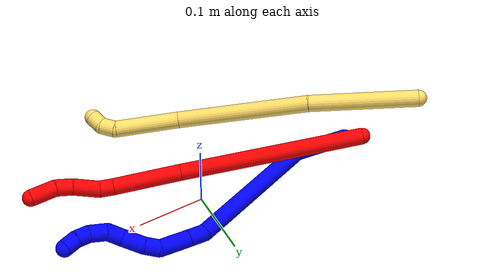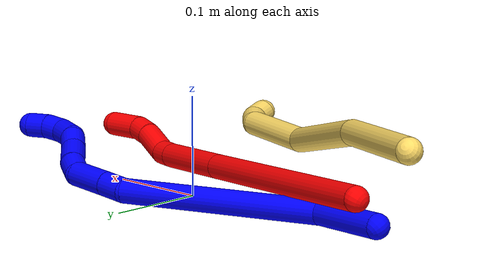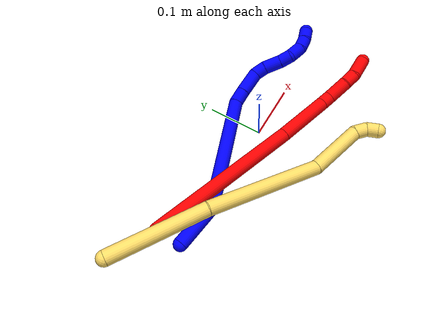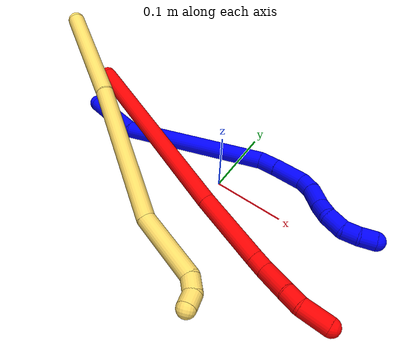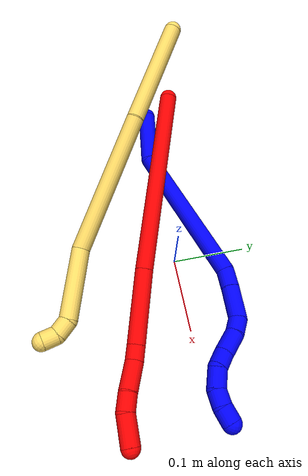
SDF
<sdf version="1.7">
 <world name="default">
  <model name="1">
   <static>0</static>
   <link name="1">
    <collision name="collision-cylinder-e_1_1_4">
     <pose>0.039305 0.000914 -0.004238 -2.92916 1.46095 -2.90466</pose>
     <geometry><cylinder><radius>0.0125</radius><length>0.079087</length></cylinder></geometry>
     <surface>
      <friction><ode><mu>1.16</mu><mu2>1.16</mu2><slip1>0</slip1><slip2>0</slip2></ode></friction>
      <contact><ode><kp>1e+06</kp><kd>1</kd><max_vel>0</max_vel><min_depth>0.001</min_depth></ode></contact>
     </surface>
    </collision>
    <visual name="visual-cylinder-e_1_1_4">
     <pose>0.039305 0.000914 -0.004238 -2.92916 1.46095 -2.90466</pose>
     <geometry><cylinder><radius>0.0125</radius><length>0.079087</length></cylinder></geometry>
     <material><ambient>0 0 1 1</ambient></material>
    </visual>
    <collision name="collision-cylinder-e_2_4_5">
     <pose>0.165535 0.030857 -0.057255 -2.60478 0.992293 -2.20137</pose>
     <geometry><cylinder><radius>0.0125</radius><length>0.207634</length></cylinder></geometry>
     <surface>
      <friction><ode><mu>1.16</mu><mu2>1.16</mu2><slip1>0</slip1><slip2>0</slip2></ode></friction>
      <contact><ode><kp>1e+06</kp><kd>1</kd><max_vel>0</max_vel><min_depth>0.001</min_depth></ode></contact>
     </surface>
    </collision>
    <visual name="visual-cylinder-e_2_4_5">
     <pose>0.165535 0.030857 -0.057255 -2.60478 0.992293 -2.20137</pose>
     <geometry><cylinder><radius>0.0125</radius><length>0.207634</length></cylinder></geometry>
     <material><ambient>0 0 1 1</ambient></material>
    </visual>
    <collision name="collision-cylinder-e_3_5_6">
     <pose>0.265033 0.062483 -0.108038 -2.22781 1.31566 -2.00831</pose>
     <geometry><cylinder><radius>0.0125</radius><length>0.025989</length></cylinder></geometry>
     <surface>
      <friction><ode><mu>1.16</mu><mu2>1.16</mu2><slip1>0</slip1><slip2>0</slip2></ode></friction>
      <contact><ode><kp>1e+06</kp><kd>1</kd><max_vel>0</max_vel><min_depth>0.001</min_depth></ode></contact>
     </surface>
    </collision>
    <visual name="visual-cylinder-e_3_5_6">
     <pose>0.265033 0.062483 -0.108038 -2.22781 1.31566 -2.00831</pose>
     <geometry><cylinder><radius>0.0125</radius><length>0.025989</length></cylinder></geometry>
     <material><ambient>0 0 1 1</ambient></material>
    </visual>
    <collision name="collision-cylinder-e_4_6_7">
     <pose>0.299246 0.068547 -0.113116 -2.29648 1.35983 -2.12651</pose>
     <geometry><cylinder><radius>0.0125</radius><length>0.044261</length></cylinder></geometry>
     <surface>
      <friction><ode><mu>1.16</mu><mu2>1.16</mu2><slip1>0</slip1><slip2>0</slip2></ode></friction>
      <contact><ode><kp>1e+06</kp><kd>1</kd><max_vel>0</max_vel><min_depth>0.001</min_depth></ode></contact>
     </surface>
    </collision>
    <visual name="visual-cylinder-e_4_6_7">
     <pose>0.299246 0.068547 -0.113116 -2.29648 1.35983 -2.12651</pose>
     <geometry><cylinder><radius>0.0125</radius><length>0.044261</length></cylinder></geometry>
     <material><ambient>0 0 1 1</ambient></material>
    </visual>
    <collision name="collision-cylinder-e_5_7_8">
     <pose>0.331153 0.073069 -0.112138 -0.254772 1.18338 -0.171717</pose>
     <geometry><cylinder><radius>0.0125</radius><length>0.022177</length></cylinder></geometry>
     <surface>
      <friction><ode><mu>1.16</mu><mu2>1.16</mu2><slip1>0</slip1><slip2>0</slip2></ode></friction>
      <contact><ode><kp>1e+06</kp><kd>1</kd><max_vel>0</max_vel><min_depth>0.001</min_depth></ode></contact>
     </surface>
    </collision>
    <visual name="visual-cylinder-e_5_7_8">
     <pose>0.331153 0.073069 -0.112138 -0.254772 1.18338 -0.171717</pose>
     <geometry><cylinder><radius>0.0125</radius><length>0.022177</length></cylinder></geometry>
     <material><ambient>0 0 1 1</ambient></material>
    </visual>
    <collision name="collision-cylinder-e_6_8_9">
     <pose>0.3549 0.073314 -0.099498 0.094126 1.00168 0.051551</pose>
     <geometry><cylinder><radius>0.0125</radius><length>0.032005</length></cylinder></geometry>
     <surface>
      <friction><ode><mu>1.16</mu><mu2>1.16</mu2><slip1>0</slip1><slip2>0</slip2></ode></friction>
      <contact><ode><kp>1e+06</kp><kd>1</kd><max_vel>0</max_vel><min_depth>0.001</min_depth></ode></contact>
     </surface>
    </collision>
    <visual name="visual-cylinder-e_6_8_9">
     <pose>0.3549 0.073314 -0.099498 0.094126 1.00168 0.051551</pose>
     <geometry><cylinder><radius>0.0125</radius><length>0.032005</length></cylinder></geometry>
     <material><ambient>0 0 1 1</ambient></material>
    </visual>
    <collision name="collision-cylinder-e_7_9_10">
     <pose>0.377677 0.073581 -0.084955 -0.178872 0.993569 -0.097156</pose>
     <geometry><cylinder><radius>0.0125</radius><length>0.022189</length></cylinder></geometry>
     <surface>
      <friction><ode><mu>1.16</mu><mu2>1.16</mu2><slip1>0</slip1><slip2>0</slip2></ode></friction>
      <contact><ode><kp>1e+06</kp><kd>1</kd><max_vel>0</max_vel><min_depth>0.001</min_depth></ode></contact>
     </surface>
    </collision>
    <visual name="visual-cylinder-e_7_9_10">
     <pose>0.377677 0.073581 -0.084955 -0.178872 0.993569 -0.097156</pose>
     <geometry><cylinder><radius>0.0125</radius><length>0.022189</length></cylinder></geometry>
     <material><ambient>0 0 1 1</ambient></material>
    </visual>
    <collision name="collision-cylinder-e_8_10_11">
     <pose>0.399832 0.07488 -0.077723 -0.172226 1.47056 -0.155843</pose>
     <geometry><cylinder><radius>0.0125</radius><length>0.025846</length></cylinder></geometry>
     <surface>
      <friction><ode><mu>1.16</mu><mu2>1.16</mu2><slip1>0</slip1><slip2>0</slip2></ode></friction>
      <contact><ode><kp>1e+06</kp><kd>1</kd><max_vel>0</max_vel><min_depth>0.001</min_depth></ode></contact>
     </surface>
    </collision>
    <visual name="visual-cylinder-e_8_10_11">
     <pose>0.399832 0.07488 -0.077723 -0.172226 1.47056 -0.155843</pose>
     <geometry><cylinder><radius>0.0125</radius><length>0.025846</length></cylinder></geometry>
     <material><ambient>0 0 1 1</ambient></material>
    </visual>
    <collision name="collision-cylinder-e_9_11_12">
     <pose>0.422193 0.077681 -0.078701 -2.28862 1.22495 -1.99349</pose>
     <geometry><cylinder><radius>0.0125</radius><length>0.020202</length></cylinder></geometry>
     <surface>
      <friction><ode><mu>1.16</mu><mu2>1.16</mu2><slip1>0</slip1><slip2>0</slip2></ode></friction>
      <contact><ode><kp>1e+06</kp><kd>1</kd><max_vel>0</max_vel><min_depth>0.001</min_depth></ode></contact>
     </surface>
    </collision>
    <visual name="visual-cylinder-e_9_11_12">
     <pose>0.422193 0.077681 -0.078701 -2.28862 1.22495 -1.99349</pose>
     <geometry><cylinder><radius>0.0125</radius><length>0.020202</length></cylinder></geometry>
     <material><ambient>0 0 1 1</ambient></material>
    </visual>
    <collision name="collision-cylinder-e_10_12_2">
     <pose>0.440429 0.082904 -0.085742 -2.63698 1.01128 -2.27003</pose>
     <geometry><cylinder><radius>0.0125</radius><length>0.02061</length></cylinder></geometry>
     <surface>
      <friction><ode><mu>1.16</mu><mu2>1.16</mu2><slip1>0</slip1><slip2>0</slip2></ode></friction>
      <contact><ode><kp>1e+06</kp><kd>1</kd><max_vel>0</max_vel><min_depth>0.001</min_depth></ode></contact>
     </surface>
    </collision>
    <visual name="visual-cylinder-e_10_12_2">
     <pose>0.440429 0.082904 -0.085742 -2.63698 1.01128 -2.27003</pose>
     <geometry><cylinder><radius>0.0125</radius><length>0.02061</length></cylinder></geometry>
     <material><ambient>0 0 1 1</ambient></material>
    </visual>
    <collision name="collision-sphere-2">
     <pose>0.449163 0.085549 -0.090529 0 -0 0</pose>
     <geometry><sphere><radius>0.0125</radius></sphere></geometry>
     <surface>
      <friction><ode><mu>1.16</mu><mu2>1.16</mu2><slip1>0</slip1><slip2>0</slip2></ode></friction>
      <contact><ode><kp>1e+06</kp><kd>1</kd><max_vel>0</max_vel><min_depth>0.001</min_depth></ode></contact>
     </surface>
    </collision>
    <visual name="visual-sphere-2">
     <pose>0.449163 0.085549 -0.090529 0 -0 0</pose>
     <geometry><sphere><radius>0.0125</radius></sphere></geometry>
     <material><ambient>0 0 1 1</ambient></material>
    </visual>
    <collision name="collision-sphere-12">
     <pose>0.431696 0.08026 -0.080954 0 -0 0</pose>
     <geometry><sphere><radius>0.0125</radius></sphere></geometry>
     <surface>
      <friction><ode><mu>1.16</mu><mu2>1.16</mu2><slip1>0</slip1><slip2>0</slip2></ode></friction>
      <contact><ode><kp>1e+06</kp><kd>1</kd><max_vel>0</max_vel><min_depth>0.001</min_depth></ode></contact>
     </surface>
    </collision>
    <visual name="visual-sphere-12">
     <pose>0.431696 0.08026 -0.080954 0 -0 0</pose>
     <geometry><sphere><radius>0.0125</radius></sphere></geometry>
     <material><ambient>0 0 1 1</ambient></material>
    </visual>
    <collision name="collision-sphere-11">
     <pose>0.41269 0.075101 -0.076449 0 -0 0</pose>
     <geometry><sphere><radius>0.0125</radius></sphere></geometry>
     <surface>
      <friction><ode><mu>1.16</mu><mu2>1.16</mu2><slip1>0</slip1><slip2>0</slip2></ode></friction>
      <contact><ode><kp>1e+06</kp><kd>1</kd><max_vel>0</max_vel><min_depth>0.001</min_depth></ode></contact>
     </surface>
    </collision>
    <visual name="visual-sphere-11">
     <pose>0.41269 0.075101 -0.076449 0 -0 0</pose>
     <geometry><sphere><radius>0.0125</radius></sphere></geometry>
     <material><ambient>0 0 1 1</ambient></material>
    </visual>
    <collision name="collision-sphere-10">
     <pose>0.386974 0.074658 -0.078997 0 -0 0</pose>
     <geometry><sphere><radius>0.0125</radius></sphere></geometry>
     <surface>
      <friction><ode><mu>1.16</mu><mu2>1.16</mu2><slip1>0</slip1><slip2>0</slip2></ode></friction>
      <contact><ode><kp>1e+06</kp><kd>1</kd><max_vel>0</max_vel><min_depth>0.001</min_depth></ode></contact>
     </surface>
    </collision>
    <visual name="visual-sphere-10">
     <pose>0.386974 0.074658 -0.078997 0 -0 0</pose>
     <geometry><sphere><radius>0.0125</radius></sphere></geometry>
     <material><ambient>0 0 1 1</ambient></material>
    </visual>
    <collision name="collision-sphere-9">
     <pose>0.36838 0.072504 -0.090913 0 -0 0</pose>
     <geometry><sphere><radius>0.0125</radius></sphere></geometry>
     <surface>
      <friction><ode><mu>1.16</mu><mu2>1.16</mu2><slip1>0</slip1><slip2>0</slip2></ode></friction>
      <contact><ode><kp>1e+06</kp><kd>1</kd><max_vel>0</max_vel><min_depth>0.001</min_depth></ode></contact>
     </surface>
    </collision>
    <visual name="visual-sphere-9">
     <pose>0.36838 0.072504 -0.090913 0 -0 0</pose>
     <geometry><sphere><radius>0.0125</radius></sphere></geometry>
     <material><ambient>0 0 1 1</ambient></material>
    </visual>
    <collision name="collision-sphere-4">
     <pose>0.07861 0.001828 -0.008475 0 -0 0</pose>
     <geometry><sphere><radius>0.0125</radius></sphere></geometry>
     <surface>
      <friction><ode><mu>1.16</mu><mu2>1.16</mu2><slip1>0</slip1><slip2>0</slip2></ode></friction>
      <contact><ode><kp>1e+06</kp><kd>1</kd><max_vel>0</max_vel><min_depth>0.001</min_depth></ode></contact>
     </surface>
    </collision>
    <visual name="visual-sphere-4">
     <pose>0.07861 0.001828 -0.008475 0 -0 0</pose>
     <geometry><sphere><radius>0.0125</radius></sphere></geometry>
     <material><ambient>0 0 1 1</ambient></material>
    </visual>
    <collision name="collision-sphere-1">
     <geometry><sphere><radius>0.0125</radius></sphere></geometry>
     <surface>
      <friction><ode><mu>1.16</mu><mu2>1.16</mu2><slip1>0</slip1><slip2>0</slip2></ode></friction>
      <contact><ode><kp>1e+06</kp><kd>1</kd><max_vel>0</max_vel><min_depth>0.001</min_depth></ode></contact>
     </surface>
    </collision>
    <visual name="visual-sphere-1">
     <geometry><sphere><radius>0.0125</radius></sphere></geometry>
     <material><ambient>0 0 1 1</ambient></material>
    </visual>
    <collision name="collision-sphere-8">
     <pose>0.34142 0.074125 -0.108084 0 -0 0</pose>
     <geometry><sphere><radius>0.0125</radius></sphere></geometry>
     <surface>
      <friction><ode><mu>1.16</mu><mu2>1.16</mu2><slip1>0</slip1><slip2>0</slip2></ode></friction>
      <contact><ode><kp>1e+06</kp><kd>1</kd><max_vel>0</max_vel><min_depth>0.001</min_depth></ode></contact>
     </surface>
    </collision>
    <visual name="visual-sphere-8">
     <pose>0.34142 0.074125 -0.108084 0 -0 0</pose>
     <geometry><sphere><radius>0.0125</radius></sphere></geometry>
     <material><ambient>0 0 1 1</ambient></material>
    </visual>
    <collision name="collision-sphere-5">
     <pose>0.252459 0.059887 -0.106035 0 -0 0</pose>
     <geometry><sphere><radius>0.0125</radius></sphere></geometry>
     <surface>
      <friction><ode><mu>1.16</mu><mu2>1.16</mu2><slip1>0</slip1><slip2>0</slip2></ode></friction>
      <contact><ode><kp>1e+06</kp><kd>1</kd><max_vel>0</max_vel><min_depth>0.001</min_depth></ode></contact>
     </surface>
    </collision>
    <visual name="visual-sphere-5">
     <pose>0.252459 0.059887 -0.106035 0 -0 0</pose>
     <geometry><sphere><radius>0.0125</radius></sphere></geometry>
     <material><ambient>0 0 1 1</ambient></material>
    </visual>
    <collision name="collision-sphere-6">
     <pose>0.277606 0.06508 -0.110041 0 -0 0</pose>
     <geometry><sphere><radius>0.0125</radius></sphere></geometry>
     <surface>
      <friction><ode><mu>1.16</mu><mu2>1.16</mu2><slip1>0</slip1><slip2>0</slip2></ode></friction>
      <contact><ode><kp>1e+06</kp><kd>1</kd><max_vel>0</max_vel><min_depth>0.001</min_depth></ode></contact>
     </surface>
    </collision>
    <visual name="visual-sphere-6">
     <pose>0.277606 0.06508 -0.110041 0 -0 0</pose>
     <geometry><sphere><radius>0.0125</radius></sphere></geometry>
     <material><ambient>0 0 1 1</ambient></material>
    </visual>
    <collision name="collision-sphere-7">
     <pose>0.320886 0.072013 -0.116192 0 -0 0</pose>
     <geometry><sphere><radius>0.0125</radius></sphere></geometry>
     <surface>
      <friction><ode><mu>1.16</mu><mu2>1.16</mu2><slip1>0</slip1><slip2>0</slip2></ode></friction>
      <contact><ode><kp>1e+06</kp><kd>1</kd><max_vel>0</max_vel><min_depth>0.001</min_depth></ode></contact>
     </surface>
    </collision>
    <visual name="visual-sphere-7">
     <pose>0.320886 0.072013 -0.116192 0 -0 0</pose>
     <geometry><sphere><radius>0.0125</radius></sphere></geometry>
     <material><ambient>0 0 1 1</ambient></material>
    </visual>
    <inertial>
     <pose>0.22527 0.0439 -0.06592 0 -0 0</pose>
     <mass>0.5</mass>
     <inertia>
      <ixx>-0.000548</ixx>
      <ixy>0</ixy>
      <ixz>0</ixz>
      <iyy>0.00038</iyy>
      <iyz>0</iyz>
      <izz>-0.00092</izz>
     </inertia>
    </inertial>
   </link>
   <pose>-0.244697 0.007707 0.014079 1.02993 -0.002655 -0.242627</pose>
  </model>
  <model name="2">
   <static>0</static>
   <link name="2">
    <collision name="collision-cylinder-e_1_1_4">
     <pose>0.073296 -0.02538 0.113737 0.219545 0.561443 0.063537</pose>
     <geometry><cylinder><radius>0.0125</radius><length>0.275336</length></cylinder></geometry>
     <surface>
      <friction><ode><mu>1.16</mu><mu2>1.16</mu2><slip1>0</slip1><slip2>0</slip2></ode></friction>
      <contact><ode><kp>1e+06</kp><kd>1</kd><max_vel>0</max_vel><min_depth>0.001</min_depth></ode></contact>
     </surface>
    </collision>
    <visual name="visual-cylinder-e_1_1_4">
     <pose>0.073296 -0.02538 0.113737 0.219545 0.561443 0.063537</pose>
     <geometry><cylinder><radius>0.0125</radius><length>0.275336</length></cylinder></geometry>
     <material><ambient>1 0 0 1</ambient></material>
    </visual>
    <collision name="collision-cylinder-e_2_4_5">
     <pose>0.172251 -0.058909 0.270017 0.189282 0.534796 0.051999</pose>
     <geometry><cylinder><radius>0.0125</radius><length>0.100692</length></cylinder></geometry>
     <surface>
      <friction><ode><mu>1.16</mu><mu2>1.16</mu2><slip1>0</slip1><slip2>0</slip2></ode></friction>
      <contact><ode><kp>1e+06</kp><kd>1</kd><max_vel>0</max_vel><min_depth>0.001</min_depth></ode></contact>
     </surface>
    </collision>
    <visual name="visual-cylinder-e_2_4_5">
     <pose>0.172251 -0.058909 0.270017 0.189282 0.534796 0.051999</pose>
     <geometry><cylinder><radius>0.0125</radius><length>0.100692</length></cylinder></geometry>
     <material><ambient>1 0 0 1</ambient></material>
    </visual>
    <collision name="collision-cylinder-e_3_5_6">
     <pose>0.20289 -0.069063 0.321674 0.216409 0.490189 0.054328</pose>
     <geometry><cylinder><radius>0.0125</radius><length>0.021155</length></cylinder></geometry>
     <surface>
      <friction><ode><mu>1.16</mu><mu2>1.16</mu2><slip1>0</slip1><slip2>0</slip2></ode></friction>
      <contact><ode><kp>1e+06</kp><kd>1</kd><max_vel>0</max_vel><min_depth>0.001</min_depth></ode></contact>
     </surface>
    </collision>
    <visual name="visual-cylinder-e_3_5_6">
     <pose>0.20289 -0.069063 0.321674 0.216409 0.490189 0.054328</pose>
     <geometry><cylinder><radius>0.0125</radius><length>0.021155</length></cylinder></geometry>
     <material><ambient>1 0 0 1</ambient></material>
    </visual>
    <collision name="collision-cylinder-e_4_6_7">
     <pose>0.212327 -0.078732 0.348992 0.39856 0.221919 0.044996</pose>
     <geometry><cylinder><radius>0.0125</radius><length>0.040496</length></cylinder></geometry>
     <surface>
      <friction><ode><mu>1.16</mu><mu2>1.16</mu2><slip1>0</slip1><slip2>0</slip2></ode></friction>
      <contact><ode><kp>1e+06</kp><kd>1</kd><max_vel>0</max_vel><min_depth>0.001</min_depth></ode></contact>
     </surface>
    </collision>
    <visual name="visual-cylinder-e_4_6_7">
     <pose>0.212327 -0.078732 0.348992 0.39856 0.221919 0.044996</pose>
     <geometry><cylinder><radius>0.0125</radius><length>0.040496</length></cylinder></geometry>
     <material><ambient>1 0 0 1</ambient></material>
    </visual>
    <collision name="collision-cylinder-e_5_7_8">
     <pose>0.220688 -0.089386 0.377878 0.272747 0.33844 0.046882</pose>
     <geometry><cylinder><radius>0.0125</radius><length>0.023521</length></cylinder></geometry>
     <surface>
      <friction><ode><mu>1.16</mu><mu2>1.16</mu2><slip1>0</slip1><slip2>0</slip2></ode></friction>
      <contact><ode><kp>1e+06</kp><kd>1</kd><max_vel>0</max_vel><min_depth>0.001</min_depth></ode></contact>
     </surface>
    </collision>
    <visual name="visual-cylinder-e_5_7_8">
     <pose>0.220688 -0.089386 0.377878 0.272747 0.33844 0.046882</pose>
     <geometry><cylinder><radius>0.0125</radius><length>0.023521</length></cylinder></geometry>
     <material><ambient>1 0 0 1</ambient></material>
    </visual>
    <collision name="collision-cylinder-e_6_8_2">
     <pose>0.231583 -0.091147 0.406617 -0.067879 0.368609 -0.012659</pose>
     <geometry><cylinder><radius>0.0125</radius><length>0.0388</length></cylinder></geometry>
     <surface>
      <friction><ode><mu>1.16</mu><mu2>1.16</mu2><slip1>0</slip1><slip2>0</slip2></ode></friction>
      <contact><ode><kp>1e+06</kp><kd>1</kd><max_vel>0</max_vel><min_depth>0.001</min_depth></ode></contact>
     </surface>
    </collision>
    <visual name="visual-cylinder-e_6_8_2">
     <pose>0.231583 -0.091147 0.406617 -0.067879 0.368609 -0.012659</pose>
     <geometry><cylinder><radius>0.0125</radius><length>0.0388</length></cylinder></geometry>
     <material><ambient>1 0 0 1</ambient></material>
    </visual>
    <collision name="collision-sphere-2">
     <pose>0.238573 -0.089919 0.424672 0 -0 0</pose>
     <geometry><sphere><radius>0.0125</radius></sphere></geometry>
     <surface>
      <friction><ode><mu>1.16</mu><mu2>1.16</mu2><slip1>0</slip1><slip2>0</slip2></ode></friction>
      <contact><ode><kp>1e+06</kp><kd>1</kd><max_vel>0</max_vel><min_depth>0.001</min_depth></ode></contact>
     </surface>
    </collision>
    <visual name="visual-sphere-2">
     <pose>0.238573 -0.089919 0.424672 0 -0 0</pose>
     <geometry><sphere><radius>0.0125</radius></sphere></geometry>
     <material><ambient>1 0 0 1</ambient></material>
    </visual>
    <collision name="collision-sphere-4">
     <pose>0.146591 -0.050759 0.227474 0 -0 0</pose>
     <geometry><sphere><radius>0.0125</radius></sphere></geometry>
     <surface>
      <friction><ode><mu>1.16</mu><mu2>1.16</mu2><slip1>0</slip1><slip2>0</slip2></ode></friction>
      <contact><ode><kp>1e+06</kp><kd>1</kd><max_vel>0</max_vel><min_depth>0.001</min_depth></ode></contact>
     </surface>
    </collision>
    <visual name="visual-sphere-4">
     <pose>0.146591 -0.050759 0.227474 0 -0 0</pose>
     <geometry><sphere><radius>0.0125</radius></sphere></geometry>
     <material><ambient>1 0 0 1</ambient></material>
    </visual>
    <collision name="collision-sphere-1">
     <geometry><sphere><radius>0.0125</radius></sphere></geometry>
     <surface>
      <friction><ode><mu>1.16</mu><mu2>1.16</mu2><slip1>0</slip1><slip2>0</slip2></ode></friction>
      <contact><ode><kp>1e+06</kp><kd>1</kd><max_vel>0</max_vel><min_depth>0.001</min_depth></ode></contact>
     </surface>
    </collision>
    <visual name="visual-sphere-1">
     <geometry><sphere><radius>0.0125</radius></sphere></geometry>
     <material><ambient>1 0 0 1</ambient></material>
    </visual>
    <collision name="collision-sphere-8">
     <pose>0.224593 -0.092374 0.388562 0 -0 0</pose>
     <geometry><sphere><radius>0.0125</radius></sphere></geometry>
     <surface>
      <friction><ode><mu>1.16</mu><mu2>1.16</mu2><slip1>0</slip1><slip2>0</slip2></ode></friction>
      <contact><ode><kp>1e+06</kp><kd>1</kd><max_vel>0</max_vel><min_depth>0.001</min_depth></ode></contact>
     </surface>
    </collision>
    <visual name="visual-sphere-8">
     <pose>0.224593 -0.092374 0.388562 0 -0 0</pose>
     <geometry><sphere><radius>0.0125</radius></sphere></geometry>
     <material><ambient>1 0 0 1</ambient></material>
    </visual>
    <collision name="collision-sphere-5">
     <pose>0.197911 -0.067059 0.31256 0 -0 0</pose>
     <geometry><sphere><radius>0.0125</radius></sphere></geometry>
     <surface>
      <friction><ode><mu>1.16</mu><mu2>1.16</mu2><slip1>0</slip1><slip2>0</slip2></ode></friction>
      <contact><ode><kp>1e+06</kp><kd>1</kd><max_vel>0</max_vel><min_depth>0.001</min_depth></ode></contact>
     </surface>
    </collision>
    <visual name="visual-sphere-5">
     <pose>0.197911 -0.067059 0.31256 0 -0 0</pose>
     <geometry><sphere><radius>0.0125</radius></sphere></geometry>
     <material><ambient>1 0 0 1</ambient></material>
    </visual>
    <collision name="collision-sphere-6">
     <pose>0.20787 -0.071067 0.330788 0 -0 0</pose>
     <geometry><sphere><radius>0.0125</radius></sphere></geometry>
     <surface>
      <friction><ode><mu>1.16</mu><mu2>1.16</mu2><slip1>0</slip1><slip2>0</slip2></ode></friction>
      <contact><ode><kp>1e+06</kp><kd>1</kd><max_vel>0</max_vel><min_depth>0.001</min_depth></ode></contact>
     </surface>
    </collision>
    <visual name="visual-sphere-6">
     <pose>0.20787 -0.071067 0.330788 0 -0 0</pose>
     <geometry><sphere><radius>0.0125</radius></sphere></geometry>
     <material><ambient>1 0 0 1</ambient></material>
    </visual>
    <collision name="collision-sphere-7">
     <pose>0.216783 -0.086398 0.367195 0 -0 0</pose>
     <geometry><sphere><radius>0.0125</radius></sphere></geometry>
     <surface>
      <friction><ode><mu>1.16</mu><mu2>1.16</mu2><slip1>0</slip1><slip2>0</slip2></ode></friction>
      <contact><ode><kp>1e+06</kp><kd>1</kd><max_vel>0</max_vel><min_depth>0.001</min_depth></ode></contact>
     </surface>
    </collision>
    <visual name="visual-sphere-7">
     <pose>0.216783 -0.086398 0.367195 0 -0 0</pose>
     <geometry><sphere><radius>0.0125</radius></sphere></geometry>
     <material><ambient>1 0 0 1</ambient></material>
    </visual>
    <inertial>
     <pose>0.129184 -0.046416 0.208214 0 -0 0</pose>
     <mass>0.5</mass>
     <inertia>
      <ixx>0.001688</ixx>
      <ixy>0</ixy>
      <ixz>0</ixz>
      <iyy>0.001913</iyy>
      <iyz>0</iyz>
      <izz>-0.000609</izz>
     </inertia>
    </inertial>
   </link>
   <pose>-0.249683 0.043191 0.046914 -0.930798 0.993985 -0.920199</pose>
  </model>
  <model name="5">
   <static>0</static>
   <link name="5">
    <collision name="collision-cylinder-e_1_1_4">
     <pose>0.054438 0.001606 0.059042 -0.027192 0.744666 -0.010621</pose>
     <geometry><cylinder><radius>0.0125</radius><length>0.16065</length></cylinder></geometry>
     <surface>
      <friction><ode><mu>1.16</mu><mu2>1.16</mu2><slip1>0</slip1><slip2>0</slip2></ode></friction>
      <contact><ode><kp>1e+06</kp><kd>1</kd><max_vel>0</max_vel><min_depth>0.001</min_depth></ode></contact>
     </surface>
    </collision>
    <visual name="visual-cylinder-e_1_1_4">
     <pose>0.054438 0.001606 0.059042 -0.027192 0.744666 -0.010621</pose>
     <geometry><cylinder><radius>0.0125</radius><length>0.16065</length></cylinder></geometry>
     <material><ambient>1 0.858824 0.4 1</ambient></material>
    </visual>
    <collision name="collision-cylinder-e_2_4_5">
     <pose>0.168049 -0.00345 0.198769 0.08238 0.631159 0.02691</pose>
     <geometry><cylinder><radius>0.0125</radius><length>0.200555</length></cylinder></geometry>
     <surface>
      <friction><ode><mu>1.16</mu><mu2>1.16</mu2><slip1>0</slip1><slip2>0</slip2></ode></friction>
      <contact><ode><kp>1e+06</kp><kd>1</kd><max_vel>0</max_vel><min_depth>0.001</min_depth></ode></contact>
     </surface>
    </collision>
    <visual name="visual-cylinder-e_2_4_5">
     <pose>0.168049 -0.00345 0.198769 0.08238 0.631159 0.02691</pose>
     <geometry><cylinder><radius>0.0125</radius><length>0.200555</length></cylinder></geometry>
     <material><ambient>1 0.858824 0.4 1</ambient></material>
    </visual>
    <collision name="collision-cylinder-e_3_5_6">
     <pose>0.26783 -0.012868 0.305635 0.104884 0.995615 0.057037</pose>
     <geometry><cylinder><radius>0.0125</radius><length>0.096793</length></cylinder></geometry>
     <surface>
      <friction><ode><mu>1.16</mu><mu2>1.16</mu2><slip1>0</slip1><slip2>0</slip2></ode></friction>
      <contact><ode><kp>1e+06</kp><kd>1</kd><max_vel>0</max_vel><min_depth>0.001</min_depth></ode></contact>
     </surface>
    </collision>
    <visual name="visual-cylinder-e_3_5_6">
     <pose>0.26783 -0.012868 0.305635 0.104884 0.995615 0.057037</pose>
     <geometry><cylinder><radius>0.0125</radius><length>0.096793</length></cylinder></geometry>
     <material><ambient>1 0.858824 0.4 1</ambient></material>
    </visual>
    <collision name="collision-cylinder-e_4_6_7">
     <pose>0.314774 -0.012419 0.340156 -0.366978 0.616875 -0.118114</pose>
     <geometry><cylinder><radius>0.0125</radius><length>0.021903</length></cylinder></geometry>
     <surface>
      <friction><ode><mu>1.16</mu><mu2>1.16</mu2><slip1>0</slip1><slip2>0</slip2></ode></friction>
      <contact><ode><kp>1e+06</kp><kd>1</kd><max_vel>0</max_vel><min_depth>0.001</min_depth></ode></contact>
     </surface>
    </collision>
    <visual name="visual-cylinder-e_4_6_7">
     <pose>0.314774 -0.012419 0.340156 -0.366978 0.616875 -0.118114</pose>
     <geometry><cylinder><radius>0.0125</radius><length>0.021903</length></cylinder></geometry>
     <material><ambient>1 0.858824 0.4 1</ambient></material>
    </visual>
    <collision name="collision-cylinder-e_5_7_2">
     <pose>0.323007 -0.002887 0.356067 -0.695992 0.189982 -0.069098</pose>
     <geometry><cylinder><radius>0.0125</radius><length>0.020099</length></cylinder></geometry>
     <surface>
      <friction><ode><mu>1.16</mu><mu2>1.16</mu2><slip1>0</slip1><slip2>0</slip2></ode></friction>
      <contact><ode><kp>1e+06</kp><kd>1</kd><max_vel>0</max_vel><min_depth>0.001</min_depth></ode></contact>
     </surface>
    </collision>
    <visual name="visual-cylinder-e_5_7_2">
     <pose>0.323007 -0.002887 0.356067 -0.695992 0.189982 -0.069098</pose>
     <geometry><cylinder><radius>0.0125</radius><length>0.020099</length></cylinder></geometry>
     <material><ambient>1 0.858824 0.4 1</ambient></material>
    </visual>
    <collision name="collision-sphere-2">
     <pose>0.324905 0.00344 0.363641 0 -0 0</pose>
     <geometry><sphere><radius>0.0125</radius></sphere></geometry>
     <surface>
      <friction><ode><mu>1.16</mu><mu2>1.16</mu2><slip1>0</slip1><slip2>0</slip2></ode></friction>
      <contact><ode><kp>1e+06</kp><kd>1</kd><max_vel>0</max_vel><min_depth>0.001</min_depth></ode></contact>
     </surface>
    </collision>
    <visual name="visual-sphere-2">
     <pose>0.324905 0.00344 0.363641 0 -0 0</pose>
     <geometry><sphere><radius>0.0125</radius></sphere></geometry>
     <material><ambient>1 0.858824 0.4 1</ambient></material>
    </visual>
    <collision name="collision-sphere-7">
     <pose>0.321109 -0.009214 0.348494 0 -0 0</pose>
     <geometry><sphere><radius>0.0125</radius></sphere></geometry>
     <surface>
      <friction><ode><mu>1.16</mu><mu2>1.16</mu2><slip1>0</slip1><slip2>0</slip2></ode></friction>
      <contact><ode><kp>1e+06</kp><kd>1</kd><max_vel>0</max_vel><min_depth>0.001</min_depth></ode></contact>
     </surface>
    </collision>
    <visual name="visual-sphere-7">
     <pose>0.321109 -0.009214 0.348494 0 -0 0</pose>
     <geometry><sphere><radius>0.0125</radius></sphere></geometry>
     <material><ambient>1 0.858824 0.4 1</ambient></material>
    </visual>
    <collision name="collision-sphere-6">
     <pose>0.308439 -0.015624 0.331817 0 -0 0</pose>
     <geometry><sphere><radius>0.0125</radius></sphere></geometry>
     <surface>
      <friction><ode><mu>1.16</mu><mu2>1.16</mu2><slip1>0</slip1><slip2>0</slip2></ode></friction>
      <contact><ode><kp>1e+06</kp><kd>1</kd><max_vel>0</max_vel><min_depth>0.001</min_depth></ode></contact>
     </surface>
    </collision>
    <visual name="visual-sphere-6">
     <pose>0.308439 -0.015624 0.331817 0 -0 0</pose>
     <geometry><sphere><radius>0.0125</radius></sphere></geometry>
     <material><ambient>1 0.858824 0.4 1</ambient></material>
    </visual>
    <collision name="collision-sphere-5">
     <pose>0.227221 -0.010112 0.279453 0 -0 0</pose>
     <geometry><sphere><radius>0.0125</radius></sphere></geometry>
     <surface>
      <friction><ode><mu>1.16</mu><mu2>1.16</mu2><slip1>0</slip1><slip2>0</slip2></ode></friction>
      <contact><ode><kp>1e+06</kp><kd>1</kd><max_vel>0</max_vel><min_depth>0.001</min_depth></ode></contact>
     </surface>
    </collision>
    <visual name="visual-sphere-5">
     <pose>0.227221 -0.010112 0.279453 0 -0 0</pose>
     <geometry><sphere><radius>0.0125</radius></sphere></geometry>
     <material><ambient>1 0.858824 0.4 1</ambient></material>
    </visual>
    <collision name="collision-sphere-1">
     <geometry><sphere><radius>0.0125</radius></sphere></geometry>
     <surface>
      <friction><ode><mu>1.16</mu><mu2>1.16</mu2><slip1>0</slip1><slip2>0</slip2></ode></friction>
      <contact><ode><kp>1e+06</kp><kd>1</kd><max_vel>0</max_vel><min_depth>0.001</min_depth></ode></contact>
     </surface>
    </collision>
    <visual name="visual-sphere-1">
     <geometry><sphere><radius>0.0125</radius></sphere></geometry>
     <material><ambient>1 0.858824 0.4 1</ambient></material>
    </visual>
    <collision name="collision-sphere-4">
     <pose>0.108877 0.003212 0.118085 0 -0 0</pose>
     <geometry><sphere><radius>0.0125</radius></sphere></geometry>
     <surface>
      <friction><ode><mu>1.16</mu><mu2>1.16</mu2><slip1>0</slip1><slip2>0</slip2></ode></friction>
      <contact><ode><kp>1e+06</kp><kd>1</kd><max_vel>0</max_vel><min_depth>0.001</min_depth></ode></contact>
     </surface>
    </collision>
    <visual name="visual-sphere-4">
     <pose>0.108877 0.003212 0.118085 0 -0 0</pose>
     <geometry><sphere><radius>0.0125</radius></sphere></geometry>
     <material><ambient>1 0.858824 0.4 1</ambient></material>
    </visual>
    <inertial>
     <pose>0.163518 -0.004019 0.187079 0 -0 0</pose>
     <mass>0.5</mass>
     <inertia>
      <ixx>0.000893</ixx>
      <ixy>0</ixy>
      <ixz>0</ixz>
      <iyy>0.001127</iyy>
      <iyz>0</iyz>
      <izz>-0.000638</izz>
     </inertia>
    </inertial>
   </link>
   <pose>-0.327861 0.064747 0.106597 2.16458 -0.39166 0.123156</pose>
  </model>
 </world>
</sdf>
